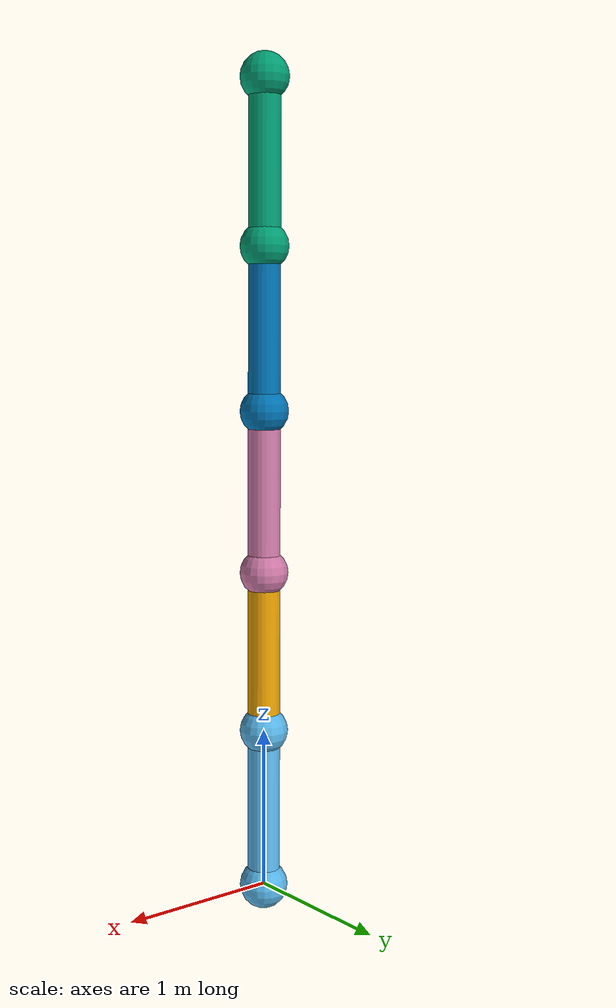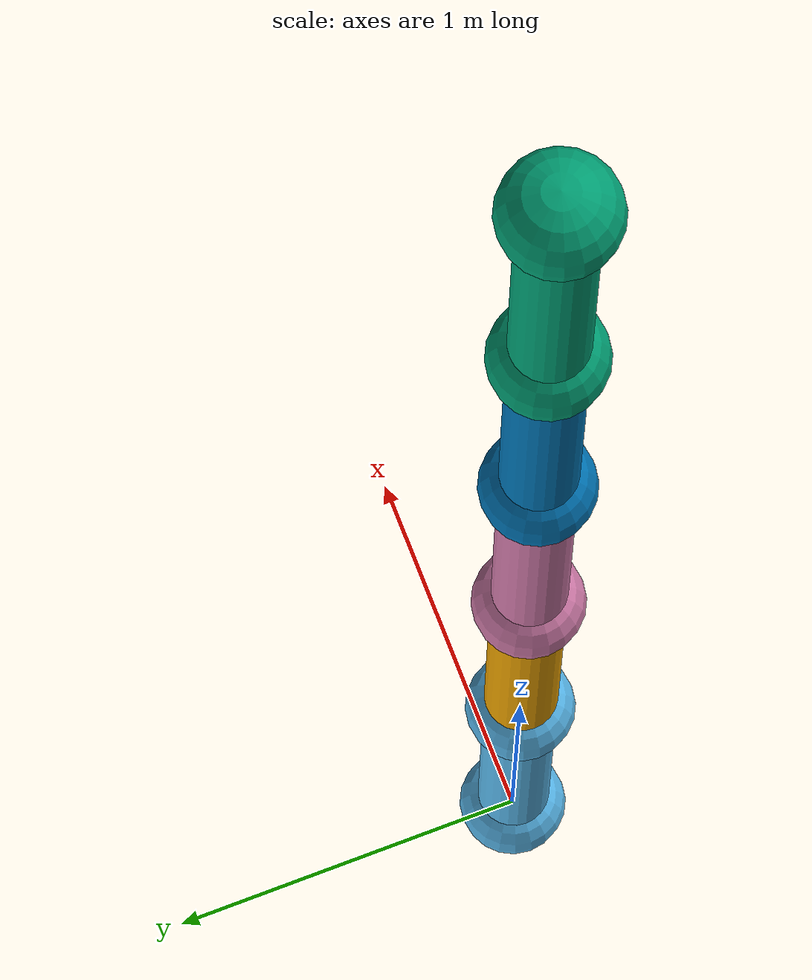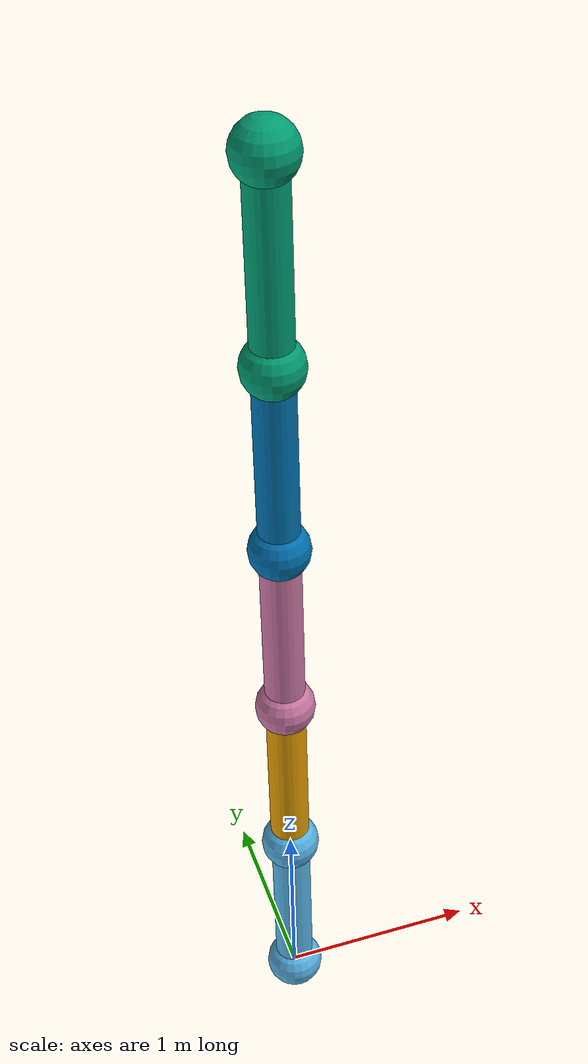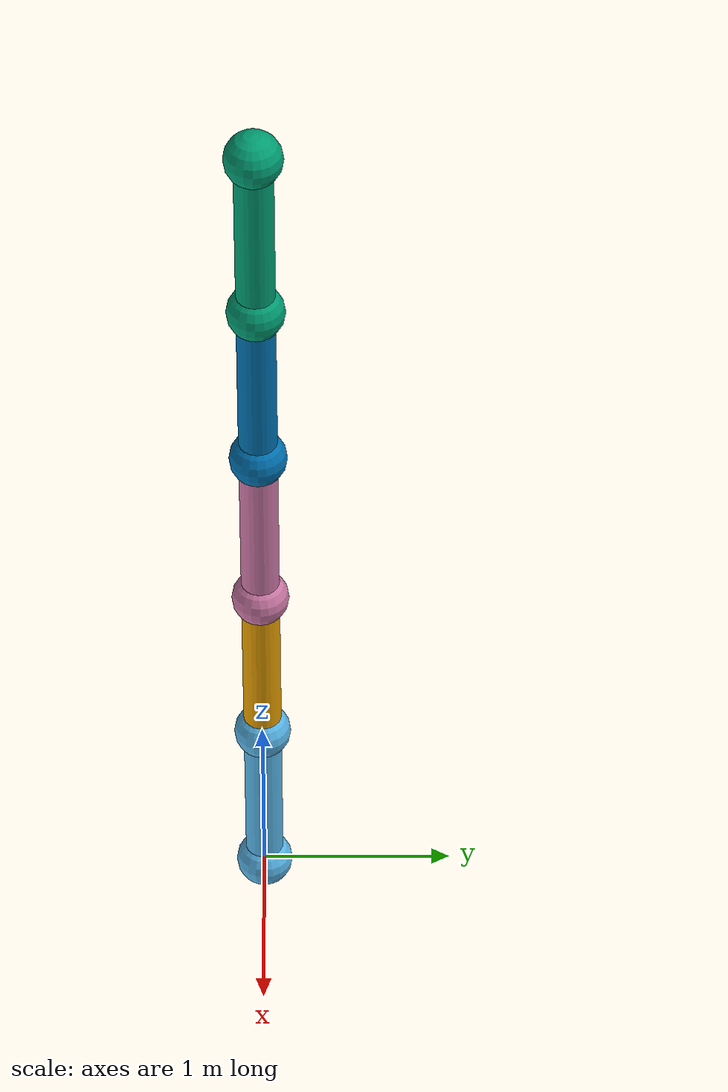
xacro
<?xml version="1.0"?>
<robot xmlns:xacro="http://www.ros.org/wiki/xacro" name="continuum">

  <!-- Arguments -->
  <xacro:arg name="num_links" default="5"/>
  <xacro:arg name="link_length" default="1.0"/>
  <xacro:arg name="link_radius" default="0.1"/>
  <xacro:arg name="sphere_radius" default="0.15"/>

  <!-- Convert args to properties -->
  <xacro:property name="N" value="$(arg num_links)"/>
  <xacro:property name="L" value="$(arg link_length)"/>
  <xacro:property name="R" value="$(arg link_radius)"/>
  <xacro:property name="Rs" value="$(arg sphere_radius)"/>

  <!-- WORLD (anchor frame) -->
  <link name="world"/>

  <!-- LINK MACRO -->
  <xacro:macro name="link_block" params="name L R Rs">

    <link name="${name}">

      <!-- cylinder -->
      <visual>
        <geometry>
          <cylinder length="${L}" radius="${R}"/>
        </geometry>
        <origin xyz="0 0 ${L/2}" rpy="0 0 0"/>
      </visual>

      <!-- bottom sphere (joint center) -->
      <visual>
        <geometry>
          <sphere radius="${Rs}"/>
        </geometry>
        <origin xyz="0 0 0"/>
      </visual>

      <!-- top sphere -->
      <visual>
        <geometry>
          <sphere radius="${Rs}"/>
        </geometry>
        <origin xyz="0 0 ${L}"/>
      </visual>

    </link>

  </xacro:macro>

  <!-- BASE LINK -->
  <xacro:link_block name="link_0" L="${L}" R="${R}" Rs="${Rs}"/>

  <!-- world → link_0 -->
  <joint name="world_to_link_0" type="fixed">
    <parent link="world"/>
    <child link="link_0"/>
    <origin xyz="0 0 0" rpy="0 0 0"/>
  </joint>

  <!-- CHAIN MACRO -->
  <xacro:macro name="chain" params="i">

    <xacro:if value="${i > 0}">

      <!-- create link -->
      <xacro:link_block name="link_${i}" L="${L}" R="${R}" Rs="${Rs}"/>

      <!-- joint X -->
      <joint name="joint_${i}_x" type="revolute">
        <parent link="link_${i-1}"/>
        <child link="link_${i}_mid"/>
        <origin xyz="0 0 ${L}" rpy="0 0 0"/>
        <axis xyz="1 0 0"/>
        <limit lower="-3.14" upper="3.14" effort="10" velocity="2"/>
      </joint>

      <!-- intermediate link -->
      <link name="link_${i}_mid"/>

      <!-- joint Y -->
      <joint name="joint_${i}_y" type="revolute">
        <parent link="link_${i}_mid"/>
        <child link="link_${i}"/>
        <origin xyz="0 0 0" rpy="0 0 0"/>
        <axis xyz="0 1 0"/>
        <limit lower="-3.14" upper="3.14" effort="10" velocity="2"/>
      </joint>

      <!-- recurse -->
      <xacro:chain i="${i-1}"/>

    </xacro:if>

  </xacro:macro>

  <!-- BUILD CHAIN -->
  <xacro:chain i="${N - 1}"/>

</robot>
